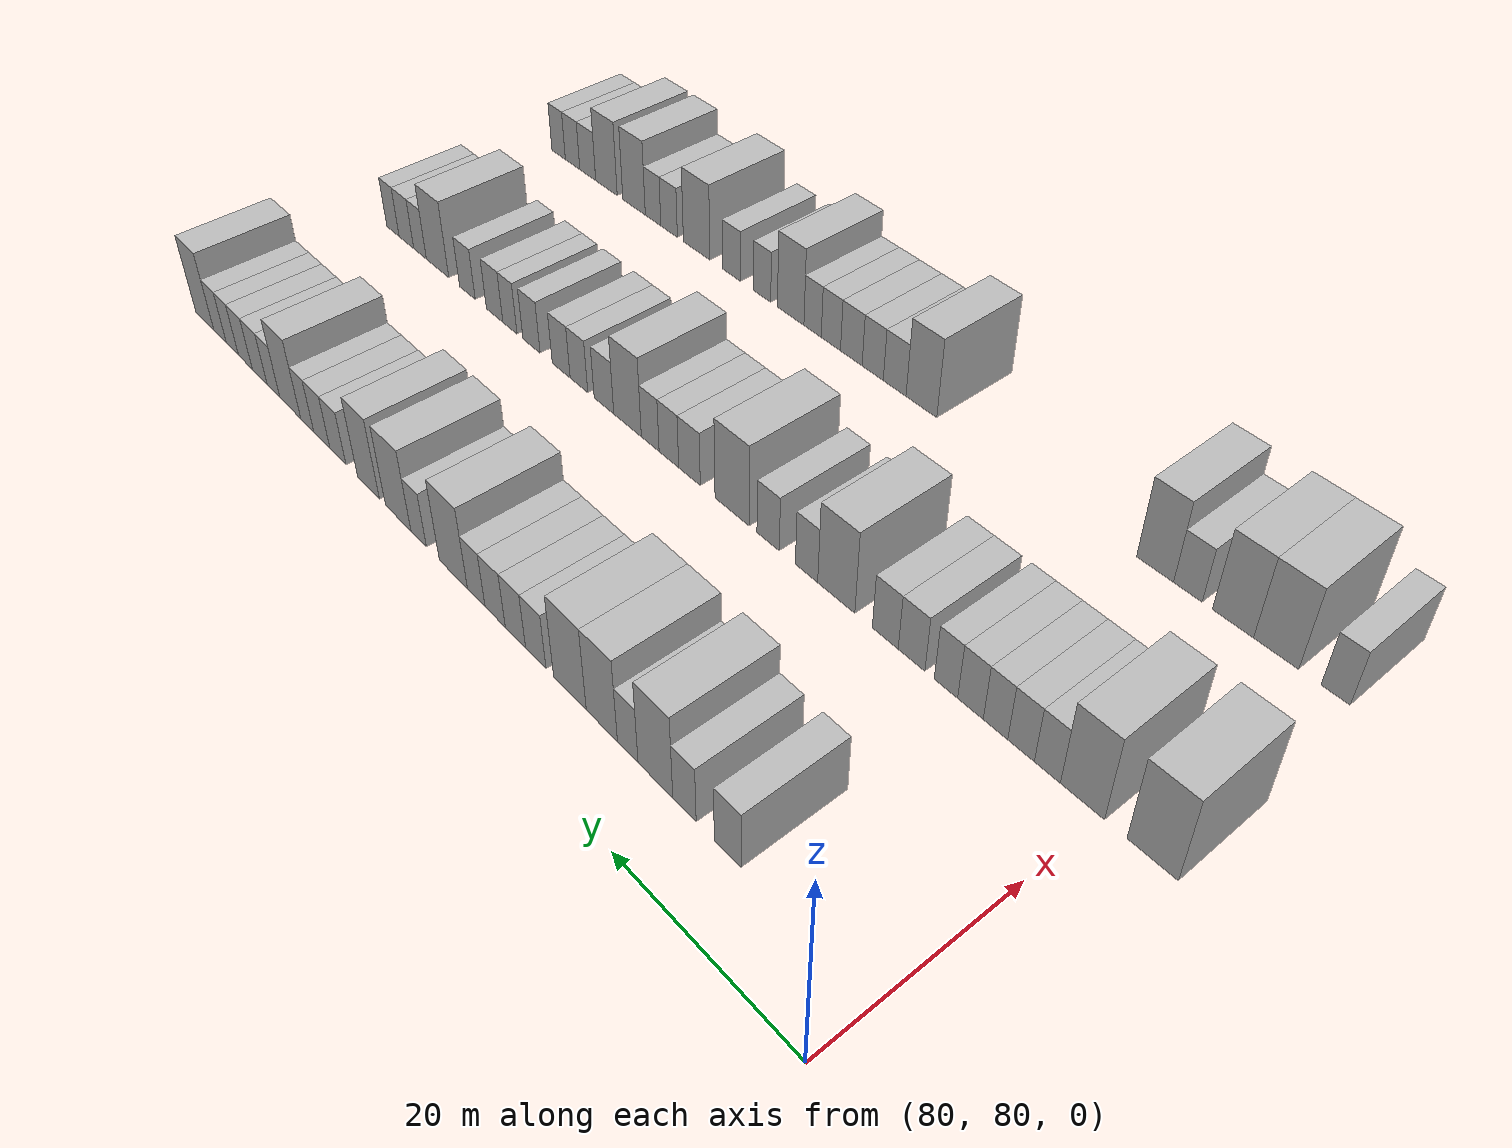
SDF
<sdf version="1.6">
 <world name="default">
  <model name="building_651">
   <static>1</static>
   <pose>91.0000 94.6889 0 0.000000 0.000000 0.000000</pose>
   <link name="link">
    <pose>0 0 3.00 0 0 0</pose>
    <collision name="collision"><geometry><box><size>10.0000 2.8633 6.0000</size></box></geometry></collision>
    <visual name="visual">
     <cast_shadows>0</cast_shadows>
     <geometry><box><size>10.0000 2.8633 6.0000</size></box></geometry>
     <material>
      <script>
       <uri>model://HANNAS_wall/materials/scripts</uri>
       <uri>model://HANNAS_wall/materials/textures</uri>
       <name>vrc/HANNAS_wall</name>
      </script>
     </material>
    </visual>
   </link>
  </model>
  <model name="building_652">
   <static>1</static>
   <pose>91.0000 99.4392 0 0.000000 0.000000 0.000000</pose>
   <link name="link">
    <pose>0 0 3.00 0 0 0</pose>
    <collision name="collision"><geometry><box><size>10.0000 2.6373 6.0000</size></box></geometry></collision>
    <visual name="visual">
     <cast_shadows>0</cast_shadows>
     <geometry><box><size>10.0000 2.6373 6.0000</size></box></geometry>
     <material>
      <script>
       <uri>model://HANNAS_wall/materials/scripts</uri>
       <uri>model://HANNAS_wall/materials/textures</uri>
       <name>vrc/HANNAS_wall</name>
      </script>
     </material>
    </visual>
   </link>
  </model>
  <model name="building_653">
   <static>1</static>
   <pose>91.0000 102.7821 0 0.000000 0.000000 0.000000</pose>
   <link name="link">
    <pose>0 0 4.50 0 0 0</pose>
    <collision name="collision"><geometry><box><size>10.0000 4.0487 9.0000</size></box></geometry></collision>
    <visual name="visual">
     <cast_shadows>0</cast_shadows>
     <geometry><box><size>10.0000 4.0487 9.0000</size></box></geometry>
     <material>
      <script>
       <uri>model://HANNAS_wall/materials/scripts</uri>
       <uri>model://HANNAS_wall/materials/textures</uri>
       <name>vrc/HANNAS_wall</name>
      </script>
     </material>
    </visual>
   </link>
  </model>
  <model name="building_654">
   <static>1</static>
   <pose>91.0000 106.0450 0 0.000000 0.000000 0.000000</pose>
   <link name="link">
    <pose>0 0 3.00 0 0 0</pose>
    <collision name="collision"><geometry><box><size>10.0000 2.4771 6.0000</size></box></geometry></collision>
    <visual name="visual">
     <cast_shadows>0</cast_shadows>
     <geometry><box><size>10.0000 2.4771 6.0000</size></box></geometry>
     <material>
      <script>
       <uri>model://HANNAS_wall/materials/scripts</uri>
       <uri>model://HANNAS_wall/materials/textures</uri>
       <name>vrc/HANNAS_wall</name>
      </script>
     </material>
    </visual>
   </link>
  </model>
  <model name="building_655">
   <static>1</static>
   <pose>91.0000 109.2227 0 0.000000 0.000000 0.000000</pose>
   <link name="link">
    <pose>0 0 4.50 0 0 0</pose>
    <collision name="collision"><geometry><box><size>10.0000 3.8782 9.0000</size></box></geometry></collision>
    <visual name="visual">
     <cast_shadows>0</cast_shadows>
     <geometry><box><size>10.0000 3.8782 9.0000</size></box></geometry>
     <material>
      <script>
       <uri>model://HANNAS_wall/materials/scripts</uri>
       <uri>model://HANNAS_wall/materials/textures</uri>
       <name>vrc/HANNAS_wall</name>
      </script>
     </material>
    </visual>
   </link>
  </model>
  <model name="building_656">
   <static>1</static>
   <pose>91.0000 113.2672 0 0.000000 0.000000 0.000000</pose>
   <link name="link">
    <pose>0 0 4.50 0 0 0</pose>
    <collision name="collision"><geometry><box><size>10.0000 4.2109 9.0000</size></box></geometry></collision>
    <visual name="visual">
     <cast_shadows>0</cast_shadows>
     <geometry><box><size>10.0000 4.2109 9.0000</size></box></geometry>
     <material>
      <script>
       <uri>model://HANNAS_wall/materials/scripts</uri>
       <uri>model://HANNAS_wall/materials/textures</uri>
       <name>vrc/HANNAS_wall</name>
      </script>
     </material>
    </visual>
   </link>
  </model>
  <model name="building_657">
   <static>1</static>
   <pose>91.0000 117.7472 0 0.000000 0.000000 0.000000</pose>
   <link name="link">
    <pose>0 0 3.00 0 0 0</pose>
    <collision name="collision"><geometry><box><size>10.0000 2.7491 6.0000</size></box></geometry></collision>
    <visual name="visual">
     <cast_shadows>0</cast_shadows>
     <geometry><box><size>10.0000 2.7491 6.0000</size></box></geometry>
     <material>
      <script>
       <uri>model://HANNAS_wall/materials/scripts</uri>
       <uri>model://HANNAS_wall/materials/textures</uri>
       <name>vrc/HANNAS_wall</name>
      </script>
     </material>
    </visual>
   </link>
  </model>
  <model name="building_658">
   <static>1</static>
   <pose>91.0000 120.5256 0 0.000000 0.000000 0.000000</pose>
   <link name="link">
    <pose>0 0 3.00 0 0 0</pose>
    <collision name="collision"><geometry><box><size>10.0000 2.8076 6.0000</size></box></geometry></collision>
    <visual name="visual">
     <cast_shadows>0</cast_shadows>
     <geometry><box><size>10.0000 2.8076 6.0000</size></box></geometry>
     <material>
      <script>
       <uri>model://HANNAS_wall/materials/scripts</uri>
       <uri>model://HANNAS_wall/materials/textures</uri>
       <name>vrc/HANNAS_wall</name>
      </script>
     </material>
    </visual>
   </link>
  </model>
  <model name="building_659">
   <static>1</static>
   <pose>91.0000 123.3632 0 0.000000 0.000000 0.000000</pose>
   <link name="link">
    <pose>0 0 3.00 0 0 0</pose>
    <collision name="collision"><geometry><box><size>10.0000 2.8677 6.0000</size></box></geometry></collision>
    <visual name="visual">
     <cast_shadows>0</cast_shadows>
     <geometry><box><size>10.0000 2.8677 6.0000</size></box></geometry>
     <material>
      <script>
       <uri>model://HANNAS_wall/materials/scripts</uri>
       <uri>model://HANNAS_wall/materials/textures</uri>
       <name>vrc/HANNAS_wall</name>
      </script>
     </material>
    </visual>
   </link>
  </model>
  <model name="building_660">
   <static>1</static>
   <pose>91.0000 126.0717 0 0.000000 0.000000 0.000000</pose>
   <link name="link">
    <pose>0 0 3.00 0 0 0</pose>
    <collision name="collision"><geometry><box><size>10.0000 2.5494 6.0000</size></box></geometry></collision>
    <visual name="visual">
     <cast_shadows>0</cast_shadows>
     <geometry><box><size>10.0000 2.5494 6.0000</size></box></geometry>
     <material>
      <script>
       <uri>model://HANNAS_wall/materials/scripts</uri>
       <uri>model://HANNAS_wall/materials/textures</uri>
       <name>vrc/HANNAS_wall</name>
      </script>
     </material>
    </visual>
   </link>
  </model>
  <model name="building_661">
   <static>1</static>
   <pose>91.0000 129.4480 0 0.000000 0.000000 0.000000</pose>
   <link name="link">
    <pose>0 0 4.50 0 0 0</pose>
    <collision name="collision"><geometry><box><size>10.0000 4.2032 9.0000</size></box></geometry></collision>
    <visual name="visual">
     <cast_shadows>0</cast_shadows>
     <geometry><box><size>10.0000 4.2032 9.0000</size></box></geometry>
     <material>
      <script>
       <uri>model://HANNAS_wall/materials/scripts</uri>
       <uri>model://HANNAS_wall/materials/textures</uri>
       <name>vrc/HANNAS_wall</name>
      </script>
     </material>
    </visual>
   </link>
  </model>
  <model name="building_662">
   <static>1</static>
   <pose>91.0000 134.7610 0 0.000000 0.000000 0.000000</pose>
   <link name="link">
    <pose>0 0 3.00 0 0 0</pose>
    <collision name="collision"><geometry><box><size>10.0000 2.4228 6.0000</size></box></geometry></collision>
    <visual name="visual">
     <cast_shadows>0</cast_shadows>
     <geometry><box><size>10.0000 2.4228 6.0000</size></box></geometry>
     <material>
      <script>
       <uri>model://HANNAS_wall/materials/scripts</uri>
       <uri>model://HANNAS_wall/materials/textures</uri>
       <name>vrc/HANNAS_wall</name>
      </script>
     </material>
    </visual>
   </link>
  </model>
  <model name="building_663">
   <static>1</static>
   <pose>91.0000 138.0165 0 0.000000 0.000000 0.000000</pose>
   <link name="link">
    <pose>0 0 4.50 0 0 0</pose>
    <collision name="collision"><geometry><box><size>10.0000 4.0880 9.0000</size></box></geometry></collision>
    <visual name="visual">
     <cast_shadows>0</cast_shadows>
     <geometry><box><size>10.0000 4.0880 9.0000</size></box></geometry>
     <material>
      <script>
       <uri>model://HANNAS_wall/materials/scripts</uri>
       <uri>model://HANNAS_wall/materials/textures</uri>
       <name>vrc/HANNAS_wall</name>
      </script>
     </material>
    </visual>
   </link>
  </model>
  <model name="building_664">
   <static>1</static>
   <pose>91.0000 142.8928 0 0.000000 0.000000 0.000000</pose>
   <link name="link">
    <pose>0 0 4.50 0 0 0</pose>
    <collision name="collision"><geometry><box><size>10.0000 3.6647 9.0000</size></box></geometry></collision>
    <visual name="visual">
     <cast_shadows>0</cast_shadows>
     <geometry><box><size>10.0000 3.6647 9.0000</size></box></geometry>
     <material>
      <script>
       <uri>model://HANNAS_wall/materials/scripts</uri>
       <uri>model://HANNAS_wall/materials/textures</uri>
       <name>vrc/HANNAS_wall</name>
      </script>
     </material>
    </visual>
   </link>
  </model>
  <model name="building_665">
   <static>1</static>
   <pose>91.0000 148.1327 0 0.000000 0.000000 0.000000</pose>
   <link name="link">
    <pose>0 0 3.00 0 0 0</pose>
    <collision name="collision"><geometry><box><size>10.0000 2.8150 6.0000</size></box></geometry></collision>
    <visual name="visual">
     <cast_shadows>0</cast_shadows>
     <geometry><box><size>10.0000 2.8150 6.0000</size></box></geometry>
     <material>
      <script>
       <uri>model://HANNAS_wall/materials/scripts</uri>
       <uri>model://HANNAS_wall/materials/textures</uri>
       <name>vrc/HANNAS_wall</name>
      </script>
     </material>
    </visual>
   </link>
  </model>
  <model name="building_666">
   <static>1</static>
   <pose>91.0000 150.9837 0 0.000000 0.000000 0.000000</pose>
   <link name="link">
    <pose>0 0 3.00 0 0 0</pose>
    <collision name="collision"><geometry><box><size>10.0000 2.8870 6.0000</size></box></geometry></collision>
    <visual name="visual">
     <cast_shadows>0</cast_shadows>
     <geometry><box><size>10.0000 2.8870 6.0000</size></box></geometry>
     <material>
      <script>
       <uri>model://HANNAS_wall/materials/scripts</uri>
       <uri>model://HANNAS_wall/materials/textures</uri>
       <name>vrc/HANNAS_wall</name>
      </script>
     </material>
    </visual>
   </link>
  </model>
  <model name="building_667">
   <static>1</static>
   <pose>91.0000 153.6281 0 0.000000 0.000000 0.000000</pose>
   <link name="link">
    <pose>0 0 3.00 0 0 0</pose>
    <collision name="collision"><geometry><box><size>10.0000 2.4017 6.0000</size></box></geometry></collision>
    <visual name="visual">
     <cast_shadows>0</cast_shadows>
     <geometry><box><size>10.0000 2.4017 6.0000</size></box></geometry>
     <material>
      <script>
       <uri>model://HANNAS_wall/materials/scripts</uri>
       <uri>model://HANNAS_wall/materials/textures</uri>
       <name>vrc/HANNAS_wall</name>
      </script>
     </material>
    </visual>
   </link>
  </model>
  <model name="building_668">
   <static>1</static>
   <pose>91.0000 156.7849 0 0.000000 0.000000 0.000000</pose>
   <link name="link">
    <pose>0 0 4.50 0 0 0</pose>
    <collision name="collision"><geometry><box><size>10.0000 3.9121 9.0000</size></box></geometry></collision>
    <visual name="visual">
     <cast_shadows>0</cast_shadows>
     <geometry><box><size>10.0000 3.9121 9.0000</size></box></geometry>
     <material>
      <script>
       <uri>model://HANNAS_wall/materials/scripts</uri>
       <uri>model://HANNAS_wall/materials/textures</uri>
       <name>vrc/HANNAS_wall</name>
      </script>
     </material>
    </visual>
   </link>
  </model>
  <model name="building_669">
   <static>1</static>
   <pose>91.0000 159.9666 0 0.000000 0.000000 0.000000</pose>
   <link name="link">
    <pose>0 0 3.00 0 0 0</pose>
    <collision name="collision"><geometry><box><size>10.0000 2.4512 6.0000</size></box></geometry></collision>
    <visual name="visual">
     <cast_shadows>0</cast_shadows>
     <geometry><box><size>10.0000 2.4512 6.0000</size></box></geometry>
     <material>
      <script>
       <uri>model://HANNAS_wall/materials/scripts</uri>
       <uri>model://HANNAS_wall/materials/textures</uri>
       <name>vrc/HANNAS_wall</name>
      </script>
     </material>
    </visual>
   </link>
  </model>
  <model name="building_670">
   <static>1</static>
   <pose>91.0000 162.6496 0 0.000000 0.000000 0.000000</pose>
   <link name="link">
    <pose>0 0 3.00 0 0 0</pose>
    <collision name="collision"><geometry><box><size>10.0000 2.9149 6.0000</size></box></geometry></collision>
    <visual name="visual">
     <cast_shadows>0</cast_shadows>
     <geometry><box><size>10.0000 2.9149 6.0000</size></box></geometry>
     <material>
      <script>
       <uri>model://HANNAS_wall/materials/scripts</uri>
       <uri>model://HANNAS_wall/materials/textures</uri>
       <name>vrc/HANNAS_wall</name>
      </script>
     </material>
    </visual>
   </link>
  </model>
  <model name="building_671">
   <static>1</static>
   <pose>91.0000 165.4971 0 0.000000 0.000000 0.000000</pose>
   <link name="link">
    <pose>0 0 3.00 0 0 0</pose>
    <collision name="collision"><geometry><box><size>10.0000 2.7802 6.0000</size></box></geometry></collision>
    <visual name="visual">
     <cast_shadows>0</cast_shadows>
     <geometry><box><size>10.0000 2.7802 6.0000</size></box></geometry>
     <material>
      <script>
       <uri>model://HANNAS_wall/materials/scripts</uri>
       <uri>model://HANNAS_wall/materials/textures</uri>
       <name>vrc/HANNAS_wall</name>
      </script>
     </material>
    </visual>
   </link>
  </model>
  <model name="building_672">
   <static>1</static>
   <pose>91.0000 168.1265 0 0.000000 0.000000 0.000000</pose>
   <link name="link">
    <pose>0 0 3.00 0 0 0</pose>
    <collision name="collision"><geometry><box><size>10.0000 2.4786 6.0000</size></box></geometry></collision>
    <visual name="visual">
     <cast_shadows>0</cast_shadows>
     <geometry><box><size>10.0000 2.4786 6.0000</size></box></geometry>
     <material>
      <script>
       <uri>model://HANNAS_wall/materials/scripts</uri>
       <uri>model://HANNAS_wall/materials/textures</uri>
       <name>vrc/HANNAS_wall</name>
      </script>
     </material>
    </visual>
   </link>
  </model>
  <model name="building_673">
   <static>1</static>
   <pose>91.0000 170.6686 0 0.000000 0.000000 0.000000</pose>
   <link name="link">
    <pose>0 0 3.00 0 0 0</pose>
    <collision name="collision"><geometry><box><size>10.0000 2.6056 6.0000</size></box></geometry></collision>
    <visual name="visual">
     <cast_shadows>0</cast_shadows>
     <geometry><box><size>10.0000 2.6056 6.0000</size></box></geometry>
     <material>
      <script>
       <uri>model://HANNAS_wall/materials/scripts</uri>
       <uri>model://HANNAS_wall/materials/textures</uri>
       <name>vrc/HANNAS_wall</name>
      </script>
     </material>
    </visual>
   </link>
  </model>
  <model name="building_674">
   <static>1</static>
   <pose>91.0000 173.9106 0 0.000000 0.000000 0.000000</pose>
   <link name="link">
    <pose>0 0 4.50 0 0 0</pose>
    <collision name="collision"><geometry><box><size>10.0000 3.8783 9.0000</size></box></geometry></collision>
    <visual name="visual">
     <cast_shadows>0</cast_shadows>
     <geometry><box><size>10.0000 3.8783 9.0000</size></box></geometry>
     <material>
      <script>
       <uri>model://HANNAS_wall/materials/scripts</uri>
       <uri>model://HANNAS_wall/materials/textures</uri>
       <name>vrc/HANNAS_wall</name>
      </script>
     </material>
    </visual>
   </link>
  </model>
  <model name="building_843">
   <static>1</static>
   <pose>113.0000 75.4598 0 0.000000 0.000000 0.000000</pose>
   <link name="link">
    <pose>0 0 4.50 0 0 0</pose>
    <collision name="collision"><geometry><box><size>10.0000 4.4562 9.0000</size></box></geometry></collision>
    <visual name="visual">
     <cast_shadows>0</cast_shadows>
     <geometry><box><size>10.0000 4.4562 9.0000</size></box></geometry>
     <material>
      <script>
       <uri>model://HANNAS_wall/materials/scripts</uri>
       <uri>model://HANNAS_wall/materials/textures</uri>
       <name>vrc/HANNAS_wall</name>
      </script>
     </material>
    </visual>
   </link>
  </model>
  <model name="building_844">
   <static>1</static>
   <pose>113.0000 81.7307 0 0.000000 0.000000 0.000000</pose>
   <link name="link">
    <pose>0 0 4.50 0 0 0</pose>
    <collision name="collision"><geometry><box><size>10.0000 4.0855 9.0000</size></box></geometry></collision>
    <visual name="visual">
     <cast_shadows>0</cast_shadows>
     <geometry><box><size>10.0000 4.0855 9.0000</size></box></geometry>
     <material>
      <script>
       <uri>model://HANNAS_wall/materials/scripts</uri>
       <uri>model://HANNAS_wall/materials/textures</uri>
       <name>vrc/HANNAS_wall</name>
      </script>
     </material>
    </visual>
   </link>
  </model>
  <model name="building_845">
   <static>1</static>
   <pose>113.0000 85.0183 0 0.000000 0.000000 0.000000</pose>
   <link name="link">
    <pose>0 0 3.00 0 0 0</pose>
    <collision name="collision"><geometry><box><size>10.0000 2.4897 6.0000</size></box></geometry></collision>
    <visual name="visual">
     <cast_shadows>0</cast_shadows>
     <geometry><box><size>10.0000 2.4897 6.0000</size></box></geometry>
     <material>
      <script>
       <uri>model://HANNAS_wall/materials/scripts</uri>
       <uri>model://HANNAS_wall/materials/textures</uri>
       <name>vrc/HANNAS_wall</name>
      </script>
     </material>
    </visual>
   </link>
  </model>
  <model name="building_846">
   <static>1</static>
   <pose>113.0000 87.5647 0 0.000000 0.000000 0.000000</pose>
   <link name="link">
    <pose>0 0 3.00 0 0 0</pose>
    <collision name="collision"><geometry><box><size>10.0000 2.6031 6.0000</size></box></geometry></collision>
    <visual name="visual">
     <cast_shadows>0</cast_shadows>
     <geometry><box><size>10.0000 2.6031 6.0000</size></box></geometry>
     <material>
      <script>
       <uri>model://HANNAS_wall/materials/scripts</uri>
       <uri>model://HANNAS_wall/materials/textures</uri>
       <name>vrc/HANNAS_wall</name>
      </script>
     </material>
    </visual>
   </link>
  </model>
  <model name="building_847">
   <static>1</static>
   <pose>113.0000 90.0932 0 0.000000 0.000000 0.000000</pose>
   <link name="link">
    <pose>0 0 3.00 0 0 0</pose>
    <collision name="collision"><geometry><box><size>10.0000 2.4539 6.0000</size></box></geometry></collision>
    <visual name="visual">
     <cast_shadows>0</cast_shadows>
     <geometry><box><size>10.0000 2.4539 6.0000</size></box></geometry>
     <material>
      <script>
       <uri>model://HANNAS_wall/materials/scripts</uri>
       <uri>model://HANNAS_wall/materials/textures</uri>
       <name>vrc/HANNAS_wall</name>
      </script>
     </material>
    </visual>
   </link>
  </model>
  <model name="building_848">
   <static>1</static>
   <pose>113.0000 92.6363 0 0.000000 0.000000 0.000000</pose>
   <link name="link">
    <pose>0 0 3.00 0 0 0</pose>
    <collision name="collision"><geometry><box><size>10.0000 2.6322 6.0000</size></box></geometry></collision>
    <visual name="visual">
     <cast_shadows>0</cast_shadows>
     <geometry><box><size>10.0000 2.6322 6.0000</size></box></geometry>
     <material>
      <script>
       <uri>model://HANNAS_wall/materials/scripts</uri>
       <uri>model://HANNAS_wall/materials/textures</uri>
       <name>vrc/HANNAS_wall</name>
      </script>
     </material>
    </visual>
   </link>
  </model>
  <model name="building_849">
   <static>1</static>
   <pose>113.0000 95.1824 0 0.000000 0.000000 0.000000</pose>
   <link name="link">
    <pose>0 0 3.00 0 0 0</pose>
    <collision name="collision"><geometry><box><size>10.0000 2.4601 6.0000</size></box></geometry></collision>
    <visual name="visual">
     <cast_shadows>0</cast_shadows>
     <geometry><box><size>10.0000 2.4601 6.0000</size></box></geometry>
     <material>
      <script>
       <uri>model://HANNAS_wall/materials/scripts</uri>
       <uri>model://HANNAS_wall/materials/textures</uri>
       <name>vrc/HANNAS_wall</name>
      </script>
     </material>
    </visual>
   </link>
  </model>
  <model name="building_850">
   <static>1</static>
   <pose>113.0000 98.8683 0 0.000000 0.000000 0.000000</pose>
   <link name="link">
    <pose>0 0 3.00 0 0 0</pose>
    <collision name="collision"><geometry><box><size>10.0000 2.9115 6.0000</size></box></geometry></collision>
    <visual name="visual">
     <cast_shadows>0</cast_shadows>
     <geometry><box><size>10.0000 2.9115 6.0000</size></box></geometry>
     <material>
      <script>
       <uri>model://HANNAS_wall/materials/scripts</uri>
       <uri>model://HANNAS_wall/materials/textures</uri>
       <name>vrc/HANNAS_wall</name>
      </script>
     </material>
    </visual>
   </link>
  </model>
  <model name="building_851">
   <static>1</static>
   <pose>113.0000 101.7708 0 0.000000 0.000000 0.000000</pose>
   <link name="link">
    <pose>0 0 3.00 0 0 0</pose>
    <collision name="collision"><geometry><box><size>10.0000 2.8936 6.0000</size></box></geometry></collision>
    <visual name="visual">
     <cast_shadows>0</cast_shadows>
     <geometry><box><size>10.0000 2.8936 6.0000</size></box></geometry>
     <material>
      <script>
       <uri>model://HANNAS_wall/materials/scripts</uri>
       <uri>model://HANNAS_wall/materials/textures</uri>
       <name>vrc/HANNAS_wall</name>
      </script>
     </material>
    </visual>
   </link>
  </model>
  <model name="building_852">
   <static>1</static>
   <pose>113.0000 107.4073 0 0.000000 0.000000 0.000000</pose>
   <link name="link">
    <pose>0 0 4.50 0 0 0</pose>
    <collision name="collision"><geometry><box><size>10.0000 4.3793 9.0000</size></box></geometry></collision>
    <visual name="visual">
     <cast_shadows>0</cast_shadows>
     <geometry><box><size>10.0000 4.3793 9.0000</size></box></geometry>
     <material>
      <script>
       <uri>model://HANNAS_wall/materials/scripts</uri>
       <uri>model://HANNAS_wall/materials/textures</uri>
       <name>vrc/HANNAS_wall</name>
      </script>
     </material>
    </visual>
   </link>
  </model>
  <model name="building_853">
   <static>1</static>
   <pose>113.0000 110.9484 0 0.000000 0.000000 0.000000</pose>
   <link name="link">
    <pose>0 0 3.00 0 0 0</pose>
    <collision name="collision"><geometry><box><size>10.0000 2.7028 6.0000</size></box></geometry></collision>
    <visual name="visual">
     <cast_shadows>0</cast_shadows>
     <geometry><box><size>10.0000 2.7028 6.0000</size></box></geometry>
     <material>
      <script>
       <uri>model://HANNAS_wall/materials/scripts</uri>
       <uri>model://HANNAS_wall/materials/textures</uri>
       <name>vrc/HANNAS_wall</name>
      </script>
     </material>
    </visual>
   </link>
  </model>
  <model name="building_854">
   <static>1</static>
   <pose>113.0000 115.7126 0 0.000000 0.000000 0.000000</pose>
   <link name="link">
    <pose>0 0 3.00 0 0 0</pose>
    <collision name="collision"><geometry><box><size>10.0000 2.8256 6.0000</size></box></geometry></collision>
    <visual name="visual">
     <cast_shadows>0</cast_shadows>
     <geometry><box><size>10.0000 2.8256 6.0000</size></box></geometry>
     <material>
      <script>
       <uri>model://HANNAS_wall/materials/scripts</uri>
       <uri>model://HANNAS_wall/materials/textures</uri>
       <name>vrc/HANNAS_wall</name>
      </script>
     </material>
    </visual>
   </link>
  </model>
  <model name="building_855">
   <static>1</static>
   <pose>113.0000 120.3729 0 0.000000 0.000000 0.000000</pose>
   <link name="link">
    <pose>0 0 4.50 0 0 0</pose>
    <collision name="collision"><geometry><box><size>10.0000 4.4949 9.0000</size></box></geometry></collision>
    <visual name="visual">
     <cast_shadows>0</cast_shadows>
     <geometry><box><size>10.0000 4.4949 9.0000</size></box></geometry>
     <material>
      <script>
       <uri>model://HANNAS_wall/materials/scripts</uri>
       <uri>model://HANNAS_wall/materials/textures</uri>
       <name>vrc/HANNAS_wall</name>
      </script>
     </material>
    </visual>
   </link>
  </model>
  <model name="building_856">
   <static>1</static>
   <pose>113.0000 126.1124 0 0.000000 0.000000 0.000000</pose>
   <link name="link">
    <pose>0 0 3.00 0 0 0</pose>
    <collision name="collision"><geometry><box><size>10.0000 2.9841 6.0000</size></box></geometry></collision>
    <visual name="visual">
     <cast_shadows>0</cast_shadows>
     <geometry><box><size>10.0000 2.9841 6.0000</size></box></geometry>
     <material>
      <script>
       <uri>model://HANNAS_wall/materials/scripts</uri>
       <uri>model://HANNAS_wall/materials/textures</uri>
       <name>vrc/HANNAS_wall</name>
      </script>
     </material>
    </visual>
   </link>
  </model>
  <model name="building_857">
   <static>1</static>
   <pose>113.0000 128.9899 0 0.000000 0.000000 0.000000</pose>
   <link name="link">
    <pose>0 0 3.00 0 0 0</pose>
    <collision name="collision"><geometry><box><size>10.0000 2.7709 6.0000</size></box></geometry></collision>
    <visual name="visual">
     <cast_shadows>0</cast_shadows>
     <geometry><box><size>10.0000 2.7709 6.0000</size></box></geometry>
     <material>
      <script>
       <uri>model://HANNAS_wall/materials/scripts</uri>
       <uri>model://HANNAS_wall/materials/textures</uri>
       <name>vrc/HANNAS_wall</name>
      </script>
     </material>
    </visual>
   </link>
  </model>
  <model name="building_858">
   <static>1</static>
   <pose>113.0000 131.6604 0 0.000000 0.000000 0.000000</pose>
   <link name="link">
    <pose>0 0 3.00 0 0 0</pose>
    <collision name="collision"><geometry><box><size>10.0000 2.5701 6.0000</size></box></geometry></collision>
    <visual name="visual">
     <cast_shadows>0</cast_shadows>
     <geometry><box><size>10.0000 2.5701 6.0000</size></box></geometry>
     <material>
      <script>
       <uri>model://HANNAS_wall/materials/scripts</uri>
       <uri>model://HANNAS_wall/materials/textures</uri>
       <name>vrc/HANNAS_wall</name>
      </script>
     </material>
    </visual>
   </link>
  </model>
  <model name="building_859">
   <static>1</static>
   <pose>113.0000 134.9958 0 0.000000 0.000000 0.000000</pose>
   <link name="link">
    <pose>0 0 4.50 0 0 0</pose>
    <collision name="collision"><geometry><box><size>10.0000 4.1009 9.0000</size></box></geometry></collision>
    <visual name="visual">
     <cast_shadows>0</cast_shadows>
     <geometry><box><size>10.0000 4.1009 9.0000</size></box></geometry>
     <material>
      <script>
       <uri>model://HANNAS_wall/materials/scripts</uri>
       <uri>model://HANNAS_wall/materials/textures</uri>
       <name>vrc/HANNAS_wall</name>
      </script>
     </material>
    </visual>
   </link>
  </model>
  <model name="building_860">
   <static>1</static>
   <pose>113.0000 138.5392 0 0.000000 0.000000 0.000000</pose>
   <link name="link">
    <pose>0 0 3.00 0 0 0</pose>
    <collision name="collision"><geometry><box><size>10.0000 2.9859 6.0000</size></box></geometry></collision>
    <visual name="visual">
     <cast_shadows>0</cast_shadows>
     <geometry><box><size>10.0000 2.9859 6.0000</size></box></geometry>
     <material>
      <script>
       <uri>model://HANNAS_wall/materials/scripts</uri>
       <uri>model://HANNAS_wall/materials/textures</uri>
       <name>vrc/HANNAS_wall</name>
      </script>
     </material>
    </visual>
   </link>
  </model>
  <model name="building_861">
   <static>1</static>
   <pose>113.0000 142.4158 0 0.000000 0.000000 0.000000</pose>
   <link name="link">
    <pose>0 0 3.00 0 0 0</pose>
    <collision name="collision"><geometry><box><size>10.0000 2.7672 6.0000</size></box></geometry></collision>
    <visual name="visual">
     <cast_shadows>0</cast_shadows>
     <geometry><box><size>10.0000 2.7672 6.0000</size></box></geometry>
     <material>
      <script>
       <uri>model://HANNAS_wall/materials/scripts</uri>
       <uri>model://HANNAS_wall/materials/textures</uri>
       <name>vrc/HANNAS_wall</name>
      </script>
     </material>
    </visual>
   </link>
  </model>
  <model name="building_862">
   <static>1</static>
   <pose>113.0000 145.2352 0 0.000000 0.000000 0.000000</pose>
   <link name="link">
    <pose>0 0 3.00 0 0 0</pose>
    <collision name="collision"><geometry><box><size>10.0000 2.8716 6.0000</size></box></geometry></collision>
    <visual name="visual">
     <cast_shadows>0</cast_shadows>
     <geometry><box><size>10.0000 2.8716 6.0000</size></box></geometry>
     <material>
      <script>
       <uri>model://HANNAS_wall/materials/scripts</uri>
       <uri>model://HANNAS_wall/materials/textures</uri>
       <name>vrc/HANNAS_wall</name>
      </script>
     </material>
    </visual>
   </link>
  </model>
  <model name="building_863">
   <static>1</static>
   <pose>113.0000 150.0985 0 0.000000 0.000000 0.000000</pose>
   <link name="link">
    <pose>0 0 3.00 0 0 0</pose>
    <collision name="collision"><geometry><box><size>10.0000 2.8550 6.0000</size></box></geometry></collision>
    <visual name="visual">
     <cast_shadows>0</cast_shadows>
     <geometry><box><size>10.0000 2.8550 6.0000</size></box></geometry>
     <material>
      <script>
       <uri>model://HANNAS_wall/materials/scripts</uri>
       <uri>model://HANNAS_wall/materials/textures</uri>
       <name>vrc/HANNAS_wall</name>
      </script>
     </material>
    </visual>
   </link>
  </model>
  <model name="building_864">
   <static>1</static>
   <pose>113.0000 153.7465 0 0.000000 0.000000 0.000000</pose>
   <link name="link">
    <pose>0 0 3.00 0 0 0</pose>
    <collision name="collision"><geometry><box><size>10.0000 2.4410 6.0000</size></box></geometry></collision>
    <visual name="visual">
     <cast_shadows>0</cast_shadows>
     <geometry><box><size>10.0000 2.4410 6.0000</size></box></geometry>
     <material>
      <script>
       <uri>model://HANNAS_wall/materials/scripts</uri>
       <uri>model://HANNAS_wall/materials/textures</uri>
       <name>vrc/HANNAS_wall</name>
      </script>
     </material>
    </visual>
   </link>
  </model>
  <model name="building_865">
   <static>1</static>
   <pose>113.0000 156.4029 0 0.000000 0.000000 0.000000</pose>
   <link name="link">
    <pose>0 0 3.00 0 0 0</pose>
    <collision name="collision"><geometry><box><size>10.0000 2.8719 6.0000</size></box></geometry></collision>
    <visual name="visual">
     <cast_shadows>0</cast_shadows>
     <geometry><box><size>10.0000 2.8719 6.0000</size></box></geometry>
     <material>
      <script>
       <uri>model://HANNAS_wall/materials/scripts</uri>
       <uri>model://HANNAS_wall/materials/textures</uri>
       <name>vrc/HANNAS_wall</name>
      </script>
     </material>
    </visual>
   </link>
  </model>
  <model name="building_866">
   <static>1</static>
   <pose>113.0000 161.2537 0 0.000000 0.000000 0.000000</pose>
   <link name="link">
    <pose>0 0 3.00 0 0 0</pose>
    <collision name="collision"><geometry><box><size>10.0000 2.8298 6.0000</size></box></geometry></collision>
    <visual name="visual">
     <cast_shadows>0</cast_shadows>
     <geometry><box><size>10.0000 2.8298 6.0000</size></box></geometry>
     <material>
      <script>
       <uri>model://HANNAS_wall/materials/scripts</uri>
       <uri>model://HANNAS_wall/materials/textures</uri>
       <name>vrc/HANNAS_wall</name>
      </script>
     </material>
    </visual>
   </link>
  </model>
  <model name="building_867">
   <static>1</static>
   <pose>113.0000 166.7772 0 0.000000 0.000000 0.000000</pose>
   <link name="link">
    <pose>0 0 4.50 0 0 0</pose>
    <collision name="collision"><geometry><box><size>10.0000 4.2172 9.0000</size></box></geometry></collision>
    <visual name="visual">
     <cast_shadows>0</cast_shadows>
     <geometry><box><size>10.0000 4.2172 9.0000</size></box></geometry>
     <material>
      <script>
       <uri>model://HANNAS_wall/materials/scripts</uri>
       <uri>model://HANNAS_wall/materials/textures</uri>
       <name>vrc/HANNAS_wall</name>
      </script>
     </material>
    </visual>
   </link>
  </model>
  <model name="building_868">
   <static>1</static>
   <pose>113.0000 170.1034 0 0.000000 0.000000 0.000000</pose>
   <link name="link">
    <pose>0 0 3.00 0 0 0</pose>
    <collision name="collision"><geometry><box><size>10.0000 2.4352 6.0000</size></box></geometry></collision>
    <visual name="visual">
     <cast_shadows>0</cast_shadows>
     <geometry><box><size>10.0000 2.4352 6.0000</size></box></geometry>
     <material>
      <script>
       <uri>model://HANNAS_wall/materials/scripts</uri>
       <uri>model://HANNAS_wall/materials/textures</uri>
       <name>vrc/HANNAS_wall</name>
      </script>
     </material>
    </visual>
   </link>
  </model>
  <model name="building_869">
   <static>1</static>
   <pose>113.0000 172.7571 0 0.000000 0.000000 0.000000</pose>
   <link name="link">
    <pose>0 0 3.00 0 0 0</pose>
    <collision name="collision"><geometry><box><size>10.0000 2.8723 6.0000</size></box></geometry></collision>
    <visual name="visual">
     <cast_shadows>0</cast_shadows>
     <geometry><box><size>10.0000 2.8723 6.0000</size></box></geometry>
     <material>
      <script>
       <uri>model://HANNAS_wall/materials/scripts</uri>
       <uri>model://HANNAS_wall/materials/textures</uri>
       <name>vrc/HANNAS_wall</name>
      </script>
     </material>
    </visual>
   </link>
  </model>
  <model name="building_870">
   <static>1</static>
   <pose>113.0000 175.4131 0 0.000000 0.000000 0.000000</pose>
   <link name="link">
    <pose>0 0 3.00 0 0 0</pose>
    <collision name="collision"><geometry><box><size>10.0000 2.4396 6.0000</size></box></geometry></collision>
    <visual name="visual">
     <cast_shadows>0</cast_shadows>
     <geometry><box><size>10.0000 2.4396 6.0000</size></box></geometry>
     <material>
      <script>
       <uri>model://HANNAS_wall/materials/scripts</uri>
       <uri>model://HANNAS_wall/materials/textures</uri>
       <name>vrc/HANNAS_wall</name>
      </script>
     </material>
    </visual>
   </link>
  </model>
  <model name="building_1037">
   <static>1</static>
   <pose>135.0000 75.7045 0 0.000000 0.000000 0.000000</pose>
   <link name="link">
    <pose>0 0 3.00 0 0 0</pose>
    <collision name="collision"><geometry><box><size>10.0000 2.5681 6.0000</size></box></geometry></collision>
    <visual name="visual">
     <cast_shadows>0</cast_shadows>
     <geometry><box><size>10.0000 2.5681 6.0000</size></box></geometry>
     <material>
      <script>
       <uri>model://HANNAS_wall/materials/scripts</uri>
       <uri>model://HANNAS_wall/materials/textures</uri>
       <name>vrc/HANNAS_wall</name>
      </script>
     </material>
    </visual>
   </link>
  </model>
  <model name="building_1038">
   <static>1</static>
   <pose>135.0000 81.0783 0 0.000000 0.000000 0.000000</pose>
   <link name="link">
    <pose>0 0 4.50 0 0 0</pose>
    <collision name="collision"><geometry><box><size>10.0000 4.1796 9.0000</size></box></geometry></collision>
    <visual name="visual">
     <cast_shadows>0</cast_shadows>
     <geometry><box><size>10.0000 4.1796 9.0000</size></box></geometry>
     <material>
      <script>
       <uri>model://HANNAS_wall/materials/scripts</uri>
       <uri>model://HANNAS_wall/materials/textures</uri>
       <name>vrc/HANNAS_wall</name>
      </script>
     </material>
    </visual>
   </link>
  </model>
  <model name="building_1039">
   <static>1</static>
   <pose>135.0000 85.1385 0 0.000000 0.000000 0.000000</pose>
   <link name="link">
    <pose>0 0 4.50 0 0 0</pose>
    <collision name="collision"><geometry><box><size>10.0000 3.9407 9.0000</size></box></geometry></collision>
    <visual name="visual">
     <cast_shadows>0</cast_shadows>
     <geometry><box><size>10.0000 3.9407 9.0000</size></box></geometry>
     <material>
      <script>
       <uri>model://HANNAS_wall/materials/scripts</uri>
       <uri>model://HANNAS_wall/materials/textures</uri>
       <name>vrc/HANNAS_wall</name>
      </script>
     </material>
    </visual>
   </link>
  </model>
  <model name="building_1040">
   <static>1</static>
   <pose>135.0000 89.5366 0 0.000000 0.000000 0.000000</pose>
   <link name="link">
    <pose>0 0 3.00 0 0 0</pose>
    <collision name="collision"><geometry><box><size>10.0000 2.8554 6.0000</size></box></geometry></collision>
    <visual name="visual">
     <cast_shadows>0</cast_shadows>
     <geometry><box><size>10.0000 2.8554 6.0000</size></box></geometry>
     <material>
      <script>
       <uri>model://HANNAS_wall/materials/scripts</uri>
       <uri>model://HANNAS_wall/materials/textures</uri>
       <name>vrc/HANNAS_wall</name>
      </script>
     </material>
    </visual>
   </link>
  </model>
  <model name="building_1041">
   <static>1</static>
   <pose>135.0000 92.8596 0 0.000000 0.000000 0.000000</pose>
   <link name="link">
    <pose>0 0 4.50 0 0 0</pose>
    <collision name="collision"><geometry><box><size>10.0000 3.7906 9.0000</size></box></geometry></collision>
    <visual name="visual">
     <cast_shadows>0</cast_shadows>
     <geometry><box><size>10.0000 3.7906 9.0000</size></box></geometry>
     <material>
      <script>
       <uri>model://HANNAS_wall/materials/scripts</uri>
       <uri>model://HANNAS_wall/materials/textures</uri>
       <name>vrc/HANNAS_wall</name>
      </script>
     </material>
    </visual>
   </link>
  </model>
  <model name="building_1042">
   <static>1</static>
   <pose>135.0000 119.6847 0 0.000000 0.000000 0.000000</pose>
   <link name="link">
    <pose>0 0 4.50 0 0 0</pose>
    <collision name="collision"><geometry><box><size>10.0000 3.9532 9.0000</size></box></geometry></collision>
    <visual name="visual">
     <cast_shadows>0</cast_shadows>
     <geometry><box><size>10.0000 3.9532 9.0000</size></box></geometry>
     <material>
      <script>
       <uri>model://HANNAS_wall/materials/scripts</uri>
       <uri>model://HANNAS_wall/materials/textures</uri>
       <name>vrc/HANNAS_wall</name>
      </script>
     </material>
    </visual>
   </link>
  </model>
  <model name="building_1043">
   <static>1</static>
   <pose>135.0000 123.1579 0 0.000000 0.000000 0.000000</pose>
   <link name="link">
    <pose>0 0 3.00 0 0 0</pose>
    <collision name="collision"><geometry><box><size>10.0000 2.9933 6.0000</size></box></geometry></collision>
    <visual name="visual">
     <cast_shadows>0</cast_shadows>
     <geometry><box><size>10.0000 2.9933 6.0000</size></box></geometry>
     <material>
      <script>
       <uri>model://HANNAS_wall/materials/scripts</uri>
       <uri>model://HANNAS_wall/materials/textures</uri>
       <name>vrc/HANNAS_wall</name>
      </script>
     </material>
    </visual>
   </link>
  </model>
  <model name="building_1044">
   <static>1</static>
   <pose>135.0000 126.0814 0 0.000000 0.000000 0.000000</pose>
   <link name="link">
    <pose>0 0 3.00 0 0 0</pose>
    <collision name="collision"><geometry><box><size>10.0000 2.8537 6.0000</size></box></geometry></collision>
    <visual name="visual">
     <cast_shadows>0</cast_shadows>
     <geometry><box><size>10.0000 2.8537 6.0000</size></box></geometry>
     <material>
      <script>
       <uri>model://HANNAS_wall/materials/scripts</uri>
       <uri>model://HANNAS_wall/materials/textures</uri>
       <name>vrc/HANNAS_wall</name>
      </script>
     </material>
    </visual>
   </link>
  </model>
  <model name="building_1045">
   <static>1</static>
   <pose>135.0000 128.9982 0 0.000000 0.000000 0.000000</pose>
   <link name="link">
    <pose>0 0 3.00 0 0 0</pose>
    <collision name="collision"><geometry><box><size>10.0000 2.9798 6.0000</size></box></geometry></collision>
    <visual name="visual">
     <cast_shadows>0</cast_shadows>
     <geometry><box><size>10.0000 2.9798 6.0000</size></box></geometry>
     <material>
      <script>
       <uri>model://HANNAS_wall/materials/scripts</uri>
       <uri>model://HANNAS_wall/materials/textures</uri>
       <name>vrc/HANNAS_wall</name>
      </script>
     </material>
    </visual>
   </link>
  </model>
  <model name="building_1046">
   <static>1</static>
   <pose>135.0000 131.8459 0 0.000000 0.000000 0.000000</pose>
   <link name="link">
    <pose>0 0 3.00 0 0 0</pose>
    <collision name="collision"><geometry><box><size>10.0000 2.7156 6.0000</size></box></geometry></collision>
    <visual name="visual">
     <cast_shadows>0</cast_shadows>
     <geometry><box><size>10.0000 2.7156 6.0000</size></box></geometry>
     <material>
      <script>
       <uri>model://HANNAS_wall/materials/scripts</uri>
       <uri>model://HANNAS_wall/materials/textures</uri>
       <name>vrc/HANNAS_wall</name>
      </script>
     </material>
    </visual>
   </link>
  </model>
  <model name="building_1047">
   <static>1</static>
   <pose>135.0000 134.4446 0 0.000000 0.000000 0.000000</pose>
   <link name="link">
    <pose>0 0 3.00 0 0 0</pose>
    <collision name="collision"><geometry><box><size>10.0000 2.4820 6.0000</size></box></geometry></collision>
    <visual name="visual">
     <cast_shadows>0</cast_shadows>
     <geometry><box><size>10.0000 2.4820 6.0000</size></box></geometry>
     <material>
      <script>
       <uri>model://HANNAS_wall/materials/scripts</uri>
       <uri>model://HANNAS_wall/materials/textures</uri>
       <name>vrc/HANNAS_wall</name>
      </script>
     </material>
    </visual>
   </link>
  </model>
  <model name="building_1048">
   <static>1</static>
   <pose>135.0000 137.6341 0 0.000000 0.000000 0.000000</pose>
   <link name="link">
    <pose>0 0 4.50 0 0 0</pose>
    <collision name="collision"><geometry><box><size>10.0000 3.8970 9.0000</size></box></geometry></collision>
    <visual name="visual">
     <cast_shadows>0</cast_shadows>
     <geometry><box><size>10.0000 3.8970 9.0000</size></box></geometry>
     <material>
      <script>
       <uri>model://HANNAS_wall/materials/scripts</uri>
       <uri>model://HANNAS_wall/materials/textures</uri>
       <name>vrc/HANNAS_wall</name>
      </script>
     </material>
    </visual>
   </link>
  </model>
  <model name="building_1049">
   <static>1</static>
   <pose>135.0000 141.8847 0 0.000000 0.000000 0.000000</pose>
   <link name="link">
    <pose>0 0 3.00 0 0 0</pose>
    <collision name="collision"><geometry><box><size>10.0000 2.6041 6.0000</size></box></geometry></collision>
    <visual name="visual">
     <cast_shadows>0</cast_shadows>
     <geometry><box><size>10.0000 2.6041 6.0000</size></box></geometry>
     <material>
      <script>
       <uri>model://HANNAS_wall/materials/scripts</uri>
       <uri>model://HANNAS_wall/materials/textures</uri>
       <name>vrc/HANNAS_wall</name>
      </script>
     </material>
    </visual>
   </link>
  </model>
  <model name="building_1050">
   <static>1</static>
   <pose>135.0000 146.6042 0 0.000000 0.000000 0.000000</pose>
   <link name="link">
    <pose>0 0 3.00 0 0 0</pose>
    <collision name="collision"><geometry><box><size>10.0000 2.8350 6.0000</size></box></geometry></collision>
    <visual name="visual">
     <cast_shadows>0</cast_shadows>
     <geometry><box><size>10.0000 2.8350 6.0000</size></box></geometry>
     <material>
      <script>
       <uri>model://HANNAS_wall/materials/scripts</uri>
       <uri>model://HANNAS_wall/materials/textures</uri>
       <name>vrc/HANNAS_wall</name>
      </script>
     </material>
    </visual>
   </link>
  </model>
  <model name="building_1051">
   <static>1</static>
   <pose>135.0000 152.1837 0 0.000000 0.000000 0.000000</pose>
   <link name="link">
    <pose>0 0 4.50 0 0 0</pose>
    <collision name="collision"><geometry><box><size>10.0000 4.3239 9.0000</size></box></geometry></collision>
    <visual name="visual">
     <cast_shadows>0</cast_shadows>
     <geometry><box><size>10.0000 4.3239 9.0000</size></box></geometry>
     <material>
      <script>
       <uri>model://HANNAS_wall/materials/scripts</uri>
       <uri>model://HANNAS_wall/materials/textures</uri>
       <name>vrc/HANNAS_wall</name>
      </script>
     </material>
    </visual>
   </link>
  </model>
  <model name="building_1052">
   <static>1</static>
   <pose>135.0000 156.7356 0 0.000000 0.000000 0.000000</pose>
   <link name="link">
    <pose>0 0 3.00 0 0 0</pose>
    <collision name="collision"><geometry><box><size>10.0000 2.7800 6.0000</size></box></geometry></collision>
    <visual name="visual">
     <cast_shadows>0</cast_shadows>
     <geometry><box><size>10.0000 2.7800 6.0000</size></box></geometry>
     <material>
      <script>
       <uri>model://HANNAS_wall/materials/scripts</uri>
       <uri>model://HANNAS_wall/materials/textures</uri>
       <name>vrc/HANNAS_wall</name>
      </script>
     </material>
    </visual>
   </link>
  </model>
  <model name="building_1053">
   <static>1</static>
   <pose>135.0000 159.4572 0 0.000000 0.000000 0.000000</pose>
   <link name="link">
    <pose>0 0 3.00 0 0 0</pose>
    <collision name="collision"><geometry><box><size>10.0000 2.6633 6.0000</size></box></geometry></collision>
    <visual name="visual">
     <cast_shadows>0</cast_shadows>
     <geometry><box><size>10.0000 2.6633 6.0000</size></box></geometry>
     <material>
      <script>
       <uri>model://HANNAS_wall/materials/scripts</uri>
       <uri>model://HANNAS_wall/materials/textures</uri>
       <name>vrc/HANNAS_wall</name>
      </script>
     </material>
    </visual>
   </link>
  </model>
  <model name="building_1054">
   <static>1</static>
   <pose>135.0000 162.7598 0 0.000000 0.000000 0.000000</pose>
   <link name="link">
    <pose>0 0 4.50 0 0 0</pose>
    <collision name="collision"><geometry><box><size>10.0000 3.9419 9.0000</size></box></geometry></collision>
    <visual name="visual">
     <cast_shadows>0</cast_shadows>
     <geometry><box><size>10.0000 3.9419 9.0000</size></box></geometry>
     <material>
      <script>
       <uri>model://HANNAS_wall/materials/scripts</uri>
       <uri>model://HANNAS_wall/materials/textures</uri>
       <name>vrc/HANNAS_wall</name>
      </script>
     </material>
    </visual>
   </link>
  </model>
  <model name="building_1055">
   <static>1</static>
   <pose>135.0000 167.6793 0 0.000000 0.000000 0.000000</pose>
   <link name="link">
    <pose>0 0 4.50 0 0 0</pose>
    <collision name="collision"><geometry><box><size>10.0000 3.8971 9.0000</size></box></geometry></collision>
    <visual name="visual">
     <cast_shadows>0</cast_shadows>
     <geometry><box><size>10.0000 3.8971 9.0000</size></box></geometry>
     <material>
      <script>
       <uri>model://HANNAS_wall/materials/scripts</uri>
       <uri>model://HANNAS_wall/materials/textures</uri>
       <name>vrc/HANNAS_wall</name>
      </script>
     </material>
    </visual>
   </link>
  </model>
  <model name="building_1056">
   <static>1</static>
   <pose>135.0000 171.1018 0 0.000000 0.000000 0.000000</pose>
   <link name="link">
    <pose>0 0 3.00 0 0 0</pose>
    <collision name="collision"><geometry><box><size>10.0000 2.9477 6.0000</size></box></geometry></collision>
    <visual name="visual">
     <cast_shadows>0</cast_shadows>
     <geometry><box><size>10.0000 2.9477 6.0000</size></box></geometry>
     <material>
      <script>
       <uri>model://HANNAS_wall/materials/scripts</uri>
       <uri>model://HANNAS_wall/materials/textures</uri>
       <name>vrc/HANNAS_wall</name>
      </script>
     </material>
    </visual>
   </link>
  </model>
  <model name="building_1057">
   <static>1</static>
   <pose>135.0000 173.9326 0 0.000000 0.000000 0.000000</pose>
   <link name="link">
    <pose>0 0 3.00 0 0 0</pose>
    <collision name="collision"><geometry><box><size>10.0000 2.7140 6.0000</size></box></geometry></collision>
    <visual name="visual">
     <cast_shadows>0</cast_shadows>
     <geometry><box><size>10.0000 2.7140 6.0000</size></box></geometry>
     <material>
      <script>
       <uri>model://HANNAS_wall/materials/scripts</uri>
       <uri>model://HANNAS_wall/materials/textures</uri>
       <name>vrc/HANNAS_wall</name>
      </script>
     </material>
    </visual>
   </link>
  </model>
  <model name="building_1058">
   <static>1</static>
   <pose>135.0000 176.5722 0 0.000000 0.000000 0.000000</pose>
   <link name="link">
    <pose>0 0 3.00 0 0 0</pose>
    <collision name="collision"><geometry><box><size>10.0000 2.5652 6.0000</size></box></geometry></collision>
    <visual name="visual">
     <cast_shadows>0</cast_shadows>
     <geometry><box><size>10.0000 2.5652 6.0000</size></box></geometry>
     <material>
      <script>
       <uri>model://HANNAS_wall/materials/scripts</uri>
       <uri>model://HANNAS_wall/materials/textures</uri>
       <name>vrc/HANNAS_wall</name>
      </script>
     </material>
    </visual>
   </link>
  </model>
 </world>
</sdf>
